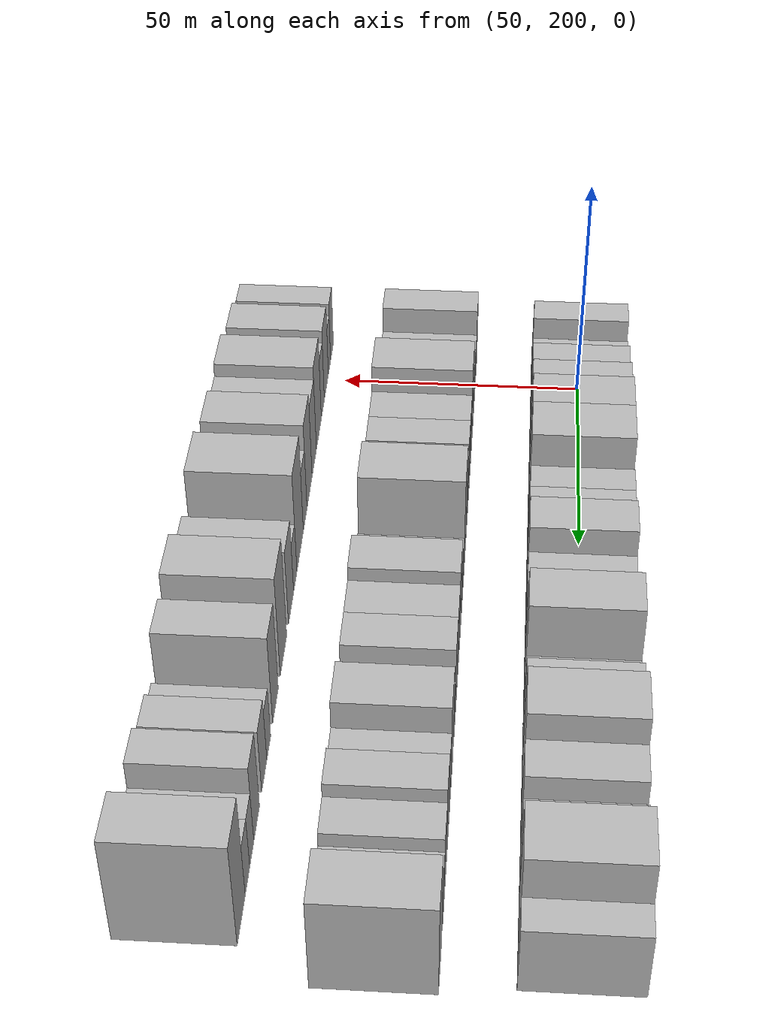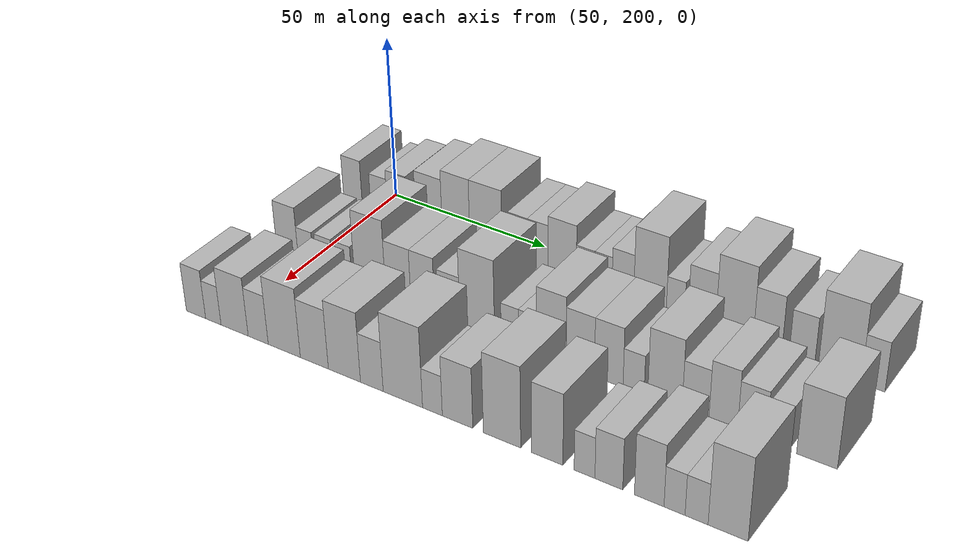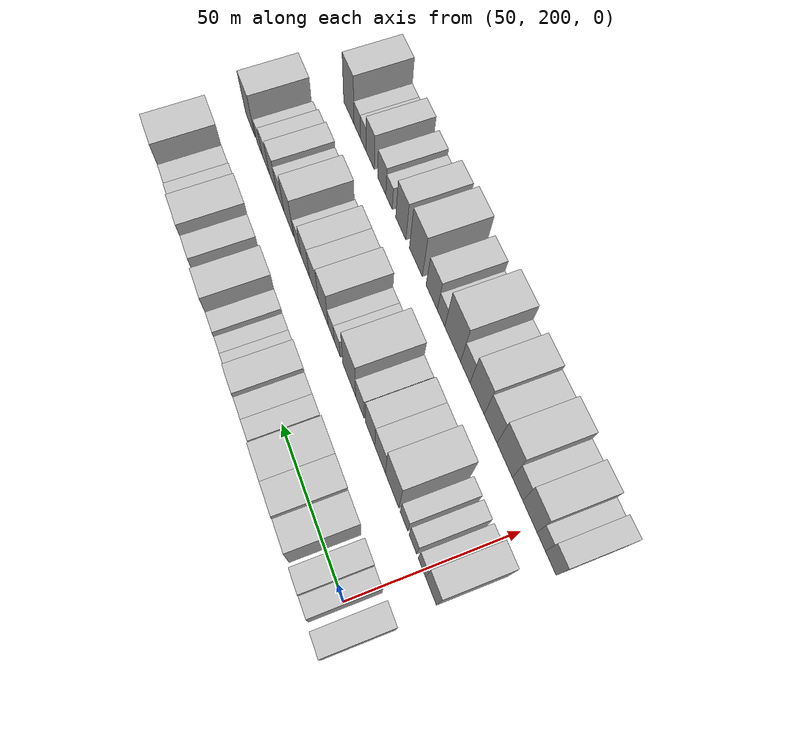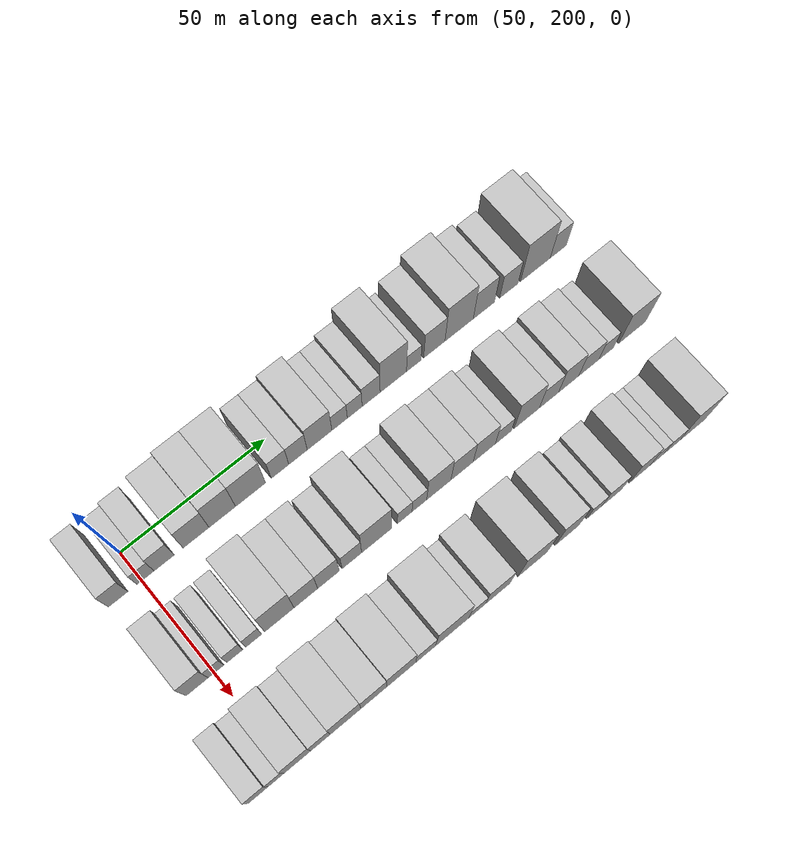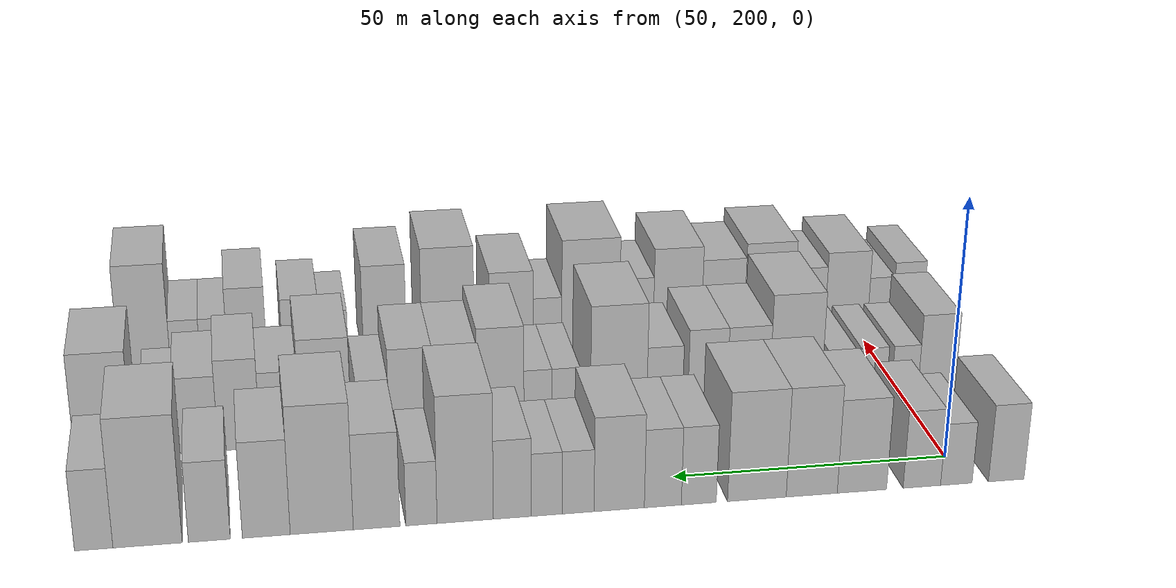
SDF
<sdf version="1.6">
 <world name="default">
  <model name="building_62">
   <static>1</static>
   <pose>50.0000 192.2035 0 0.000000 0.000000 0.000000</pose>
   <link name="link">
    <pose>0 0 7.50 0 0 0</pose>
    <collision name="collision"><geometry><box><size>20.0000 6.5476 15.0000</size></box></geometry></collision>
    <visual name="visual">
     <cast_shadows>0</cast_shadows>
     <geometry><box><size>20.0000 6.5476 15.0000</size></box></geometry>
     <material>
      <script>
       <uri>model://HANNAS_wall/materials/scripts</uri>
       <uri>model://HANNAS_wall/materials/textures</uri>
       <name>vrc/HANNAS_wall</name>
      </script>
     </material>
    </visual>
   </link>
  </model>
  <model name="building_63">
   <static>1</static>
   <pose>50.0000 201.3624 0 0.000000 0.000000 0.000000</pose>
   <link name="link">
    <pose>0 0 6.00 0 0 0</pose>
    <collision name="collision"><geometry><box><size>20.0000 5.7702 12.0000</size></box></geometry></collision>
    <visual name="visual">
     <cast_shadows>0</cast_shadows>
     <geometry><box><size>20.0000 5.7702 12.0000</size></box></geometry>
     <material>
      <script>
       <uri>model://HANNAS_wall/materials/scripts</uri>
       <uri>model://HANNAS_wall/materials/textures</uri>
       <name>vrc/HANNAS_wall</name>
      </script>
     </material>
    </visual>
   </link>
  </model>
  <model name="building_64">
   <static>1</static>
   <pose>50.0000 207.6557 0 0.000000 0.000000 0.000000</pose>
   <link name="link">
    <pose>0 0 7.50 0 0 0</pose>
    <collision name="collision"><geometry><box><size>20.0000 6.8165 15.0000</size></box></geometry></collision>
    <visual name="visual">
     <cast_shadows>0</cast_shadows>
     <geometry><box><size>20.0000 6.8165 15.0000</size></box></geometry>
     <material>
      <script>
       <uri>model://HANNAS_wall/materials/scripts</uri>
       <uri>model://HANNAS_wall/materials/textures</uri>
       <name>vrc/HANNAS_wall</name>
      </script>
     </material>
    </visual>
   </link>
  </model>
  <model name="building_65">
   <static>1</static>
   <pose>50.0000 218.5169 0 0.000000 0.000000 0.000000</pose>
   <link name="link">
    <pose>0 0 9.00 0 0 0</pose>
    <collision name="collision"><geometry><box><size>20.0000 8.9059 18.0000</size></box></geometry></collision>
    <visual name="visual">
     <cast_shadows>0</cast_shadows>
     <geometry><box><size>20.0000 8.9059 18.0000</size></box></geometry>
     <material>
      <script>
       <uri>model://HANNAS_wall/materials/scripts</uri>
       <uri>model://HANNAS_wall/materials/textures</uri>
       <name>vrc/HANNAS_wall</name>
      </script>
     </material>
    </visual>
   </link>
  </model>
  <model name="building_66">
   <static>1</static>
   <pose>50.0000 227.5522 0 0.000000 0.000000 0.000000</pose>
   <link name="link">
    <pose>0 0 10.50 0 0 0</pose>
    <collision name="collision"><geometry><box><size>20.0000 9.1647 21.0000</size></box></geometry></collision>
    <visual name="visual">
     <cast_shadows>0</cast_shadows>
     <geometry><box><size>20.0000 9.1647 21.0000</size></box></geometry>
     <material>
      <script>
       <uri>model://HANNAS_wall/materials/scripts</uri>
       <uri>model://HANNAS_wall/materials/textures</uri>
       <name>vrc/HANNAS_wall</name>
      </script>
     </material>
    </visual>
   </link>
  </model>
  <model name="building_67">
   <static>1</static>
   <pose>50.0000 237.3576 0 0.000000 0.000000 0.000000</pose>
   <link name="link">
    <pose>0 0 10.50 0 0 0</pose>
    <collision name="collision"><geometry><box><size>20.0000 10.4461 21.0000</size></box></geometry></collision>
    <visual name="visual">
     <cast_shadows>0</cast_shadows>
     <geometry><box><size>20.0000 10.4461 21.0000</size></box></geometry>
     <material>
      <script>
       <uri>model://HANNAS_wall/materials/scripts</uri>
       <uri>model://HANNAS_wall/materials/textures</uri>
       <name>vrc/HANNAS_wall</name>
      </script>
     </material>
    </visual>
   </link>
  </model>
  <model name="building_68">
   <static>1</static>
   <pose>50.0000 247.6682 0 0.000000 0.000000 0.000000</pose>
   <link name="link">
    <pose>0 0 7.50 0 0 0</pose>
    <collision name="collision"><geometry><box><size>20.0000 6.1750 15.0000</size></box></geometry></collision>
    <visual name="visual">
     <cast_shadows>0</cast_shadows>
     <geometry><box><size>20.0000 6.1750 15.0000</size></box></geometry>
     <material>
      <script>
       <uri>model://HANNAS_wall/materials/scripts</uri>
       <uri>model://HANNAS_wall/materials/textures</uri>
       <name>vrc/HANNAS_wall</name>
      </script>
     </material>
    </visual>
   </link>
  </model>
  <model name="building_69">
   <static>1</static>
   <pose>50.0000 254.0075 0 0.000000 0.000000 0.000000</pose>
   <link name="link">
    <pose>0 0 7.50 0 0 0</pose>
    <collision name="collision"><geometry><box><size>20.0000 6.5037 15.0000</size></box></geometry></collision>
    <visual name="visual">
     <cast_shadows>0</cast_shadows>
     <geometry><box><size>20.0000 6.5037 15.0000</size></box></geometry>
     <material>
      <script>
       <uri>model://HANNAS_wall/materials/scripts</uri>
       <uri>model://HANNAS_wall/materials/textures</uri>
       <name>vrc/HANNAS_wall</name>
      </script>
     </material>
    </visual>
   </link>
  </model>
  <model name="building_70">
   <static>1</static>
   <pose>50.0000 261.6604 0 0.000000 0.000000 0.000000</pose>
   <link name="link">
    <pose>0 0 9.00 0 0 0</pose>
    <collision name="collision"><geometry><box><size>20.0000 8.8022 18.0000</size></box></geometry></collision>
    <visual name="visual">
     <cast_shadows>0</cast_shadows>
     <geometry><box><size>20.0000 8.8022 18.0000</size></box></geometry>
     <material>
      <script>
       <uri>model://HANNAS_wall/materials/scripts</uri>
       <uri>model://HANNAS_wall/materials/textures</uri>
       <name>vrc/HANNAS_wall</name>
      </script>
     </material>
    </visual>
   </link>
  </model>
  <model name="building_71">
   <static>1</static>
   <pose>50.0000 268.8372 0 0.000000 0.000000 0.000000</pose>
   <link name="link">
    <pose>0 0 6.00 0 0 0</pose>
    <collision name="collision"><geometry><box><size>20.0000 5.5514 12.0000</size></box></geometry></collision>
    <visual name="visual">
     <cast_shadows>0</cast_shadows>
     <geometry><box><size>20.0000 5.5514 12.0000</size></box></geometry>
     <material>
      <script>
       <uri>model://HANNAS_wall/materials/scripts</uri>
       <uri>model://HANNAS_wall/materials/textures</uri>
       <name>vrc/HANNAS_wall</name>
      </script>
     </material>
    </visual>
   </link>
  </model>
  <model name="building_72">
   <static>1</static>
   <pose>50.0000 274.2796 0 0.000000 0.000000 0.000000</pose>
   <link name="link">
    <pose>0 0 6.00 0 0 0</pose>
    <collision name="collision"><geometry><box><size>20.0000 5.3334 12.0000</size></box></geometry></collision>
    <visual name="visual">
     <cast_shadows>0</cast_shadows>
     <geometry><box><size>20.0000 5.3334 12.0000</size></box></geometry>
     <material>
      <script>
       <uri>model://HANNAS_wall/materials/scripts</uri>
       <uri>model://HANNAS_wall/materials/textures</uri>
       <name>vrc/HANNAS_wall</name>
      </script>
     </material>
    </visual>
   </link>
  </model>
  <model name="building_73">
   <static>1</static>
   <pose>50.0000 280.2043 0 0.000000 0.000000 0.000000</pose>
   <link name="link">
    <pose>0 0 7.50 0 0 0</pose>
    <collision name="collision"><geometry><box><size>20.0000 6.5159 15.0000</size></box></geometry></collision>
    <visual name="visual">
     <cast_shadows>0</cast_shadows>
     <geometry><box><size>20.0000 6.5159 15.0000</size></box></geometry>
     <material>
      <script>
       <uri>model://HANNAS_wall/materials/scripts</uri>
       <uri>model://HANNAS_wall/materials/textures</uri>
       <name>vrc/HANNAS_wall</name>
      </script>
     </material>
    </visual>
   </link>
  </model>
  <model name="building_74">
   <static>1</static>
   <pose>50.0000 288.2811 0 0.000000 0.000000 0.000000</pose>
   <link name="link">
    <pose>0 0 12.00 0 0 0</pose>
    <collision name="collision"><geometry><box><size>20.0000 9.6376 24.0000</size></box></geometry></collision>
    <visual name="visual">
     <cast_shadows>0</cast_shadows>
     <geometry><box><size>20.0000 9.6376 24.0000</size></box></geometry>
     <material>
      <script>
       <uri>model://HANNAS_wall/materials/scripts</uri>
       <uri>model://HANNAS_wall/materials/textures</uri>
       <name>vrc/HANNAS_wall</name>
      </script>
     </material>
    </visual>
   </link>
  </model>
  <model name="building_75">
   <static>1</static>
   <pose>50.0000 295.7619 0 0.000000 0.000000 0.000000</pose>
   <link name="link">
    <pose>0 0 6.00 0 0 0</pose>
    <collision name="collision"><geometry><box><size>20.0000 5.3240 12.0000</size></box></geometry></collision>
    <visual name="visual">
     <cast_shadows>0</cast_shadows>
     <geometry><box><size>20.0000 5.3240 12.0000</size></box></geometry>
     <material>
      <script>
       <uri>model://HANNAS_wall/materials/scripts</uri>
       <uri>model://HANNAS_wall/materials/textures</uri>
       <name>vrc/HANNAS_wall</name>
      </script>
     </material>
    </visual>
   </link>
  </model>
  <model name="building_76">
   <static>1</static>
   <pose>50.0000 303.3738 0 0.000000 0.000000 0.000000</pose>
   <link name="link">
    <pose>0 0 9.00 0 0 0</pose>
    <collision name="collision"><geometry><box><size>20.0000 7.8997 18.0000</size></box></geometry></collision>
    <visual name="visual">
     <cast_shadows>0</cast_shadows>
     <geometry><box><size>20.0000 7.8997 18.0000</size></box></geometry>
     <material>
      <script>
       <uri>model://HANNAS_wall/materials/scripts</uri>
       <uri>model://HANNAS_wall/materials/textures</uri>
       <name>vrc/HANNAS_wall</name>
      </script>
     </material>
    </visual>
   </link>
  </model>
  <model name="building_77">
   <static>1</static>
   <pose>50.0000 312.6191 0 0.000000 0.000000 0.000000</pose>
   <link name="link">
    <pose>0 0 12.00 0 0 0</pose>
    <collision name="collision"><geometry><box><size>20.0000 10.5907 24.0000</size></box></geometry></collision>
    <visual name="visual">
     <cast_shadows>0</cast_shadows>
     <geometry><box><size>20.0000 10.5907 24.0000</size></box></geometry>
     <material>
      <script>
       <uri>model://HANNAS_wall/materials/scripts</uri>
       <uri>model://HANNAS_wall/materials/textures</uri>
       <name>vrc/HANNAS_wall</name>
      </script>
     </material>
    </visual>
   </link>
  </model>
  <model name="building_78">
   <static>1</static>
   <pose>50.0000 321.9065 0 0.000000 0.000000 0.000000</pose>
   <link name="link">
    <pose>0 0 9.00 0 0 0</pose>
    <collision name="collision"><geometry><box><size>20.0000 7.9841 18.0000</size></box></geometry></collision>
    <visual name="visual">
     <cast_shadows>0</cast_shadows>
     <geometry><box><size>20.0000 7.9841 18.0000</size></box></geometry>
     <material>
      <script>
       <uri>model://HANNAS_wall/materials/scripts</uri>
       <uri>model://HANNAS_wall/materials/textures</uri>
       <name>vrc/HANNAS_wall</name>
      </script>
     </material>
    </visual>
   </link>
  </model>
  <model name="building_79">
   <static>1</static>
   <pose>50.0000 331.3743 0 0.000000 0.000000 0.000000</pose>
   <link name="link">
    <pose>0 0 7.50 0 0 0</pose>
    <collision name="collision"><geometry><box><size>20.0000 6.9515 15.0000</size></box></geometry></collision>
    <visual name="visual">
     <cast_shadows>0</cast_shadows>
     <geometry><box><size>20.0000 6.9515 15.0000</size></box></geometry>
     <material>
      <script>
       <uri>model://HANNAS_wall/materials/scripts</uri>
       <uri>model://HANNAS_wall/materials/textures</uri>
       <name>vrc/HANNAS_wall</name>
      </script>
     </material>
    </visual>
   </link>
  </model>
  <model name="building_80">
   <static>1</static>
   <pose>50.0000 341.5465 0 0.000000 0.000000 0.000000</pose>
   <link name="link">
    <pose>0 0 12.00 0 0 0</pose>
    <collision name="collision"><geometry><box><size>20.0000 11.3930 24.0000</size></box></geometry></collision>
    <visual name="visual">
     <cast_shadows>0</cast_shadows>
     <geometry><box><size>20.0000 11.3930 24.0000</size></box></geometry>
     <material>
      <script>
       <uri>model://HANNAS_wall/materials/scripts</uri>
       <uri>model://HANNAS_wall/materials/textures</uri>
       <name>vrc/HANNAS_wall</name>
      </script>
     </material>
    </visual>
   </link>
  </model>
  <model name="building_81">
   <static>1</static>
   <pose>50.0000 350.3793 0 0.000000 0.000000 0.000000</pose>
   <link name="link">
    <pose>0 0 7.50 0 0 0</pose>
    <collision name="collision"><geometry><box><size>20.0000 6.2726 15.0000</size></box></geometry></collision>
    <visual name="visual">
     <cast_shadows>0</cast_shadows>
     <geometry><box><size>20.0000 6.2726 15.0000</size></box></geometry>
     <material>
      <script>
       <uri>model://HANNAS_wall/materials/scripts</uri>
       <uri>model://HANNAS_wall/materials/textures</uri>
       <name>vrc/HANNAS_wall</name>
      </script>
     </material>
    </visual>
   </link>
  </model>
  <model name="building_139">
   <static>1</static>
   <pose>82.0000 194.4306 0 0.000000 0.000000 0.000000</pose>
   <link name="link">
    <pose>0 0 9.00 0 0 0</pose>
    <collision name="collision"><geometry><box><size>20.0000 7.3424 18.0000</size></box></geometry></collision>
    <visual name="visual">
     <cast_shadows>0</cast_shadows>
     <geometry><box><size>20.0000 7.3424 18.0000</size></box></geometry>
     <material>
      <script>
       <uri>model://HANNAS_wall/materials/scripts</uri>
       <uri>model://HANNAS_wall/materials/textures</uri>
       <name>vrc/HANNAS_wall</name>
      </script>
     </material>
    </visual>
   </link>
  </model>
  <model name="building_140">
   <static>1</static>
   <pose>82.0000 200.7075 0 0.000000 0.000000 0.000000</pose>
   <link name="link">
    <pose>0 0 6.00 0 0 0</pose>
    <collision name="collision"><geometry><box><size>20.0000 5.2113 12.0000</size></box></geometry></collision>
    <visual name="visual">
     <cast_shadows>0</cast_shadows>
     <geometry><box><size>20.0000 5.2113 12.0000</size></box></geometry>
     <material>
      <script>
       <uri>model://HANNAS_wall/materials/scripts</uri>
       <uri>model://HANNAS_wall/materials/textures</uri>
       <name>vrc/HANNAS_wall</name>
      </script>
     </material>
    </visual>
   </link>
  </model>
  <model name="building_141">
   <static>1</static>
   <pose>82.0000 206.9943 0 0.000000 0.000000 0.000000</pose>
   <link name="link">
    <pose>0 0 6.00 0 0 0</pose>
    <collision name="collision"><geometry><box><size>20.0000 5.3624 12.0000</size></box></geometry></collision>
    <visual name="visual">
     <cast_shadows>0</cast_shadows>
     <geometry><box><size>20.0000 5.3624 12.0000</size></box></geometry>
     <material>
      <script>
       <uri>model://HANNAS_wall/materials/scripts</uri>
       <uri>model://HANNAS_wall/materials/textures</uri>
       <name>vrc/HANNAS_wall</name>
      </script>
     </material>
    </visual>
   </link>
  </model>
  <model name="building_142">
   <static>1</static>
   <pose>82.0000 213.3565 0 0.000000 0.000000 0.000000</pose>
   <link name="link">
    <pose>0 0 6.00 0 0 0</pose>
    <collision name="collision"><geometry><box><size>20.0000 5.3619 12.0000</size></box></geometry></collision>
    <visual name="visual">
     <cast_shadows>0</cast_shadows>
     <geometry><box><size>20.0000 5.3619 12.0000</size></box></geometry>
     <material>
      <script>
       <uri>model://HANNAS_wall/materials/scripts</uri>
       <uri>model://HANNAS_wall/materials/textures</uri>
       <name>vrc/HANNAS_wall</name>
      </script>
     </material>
    </visual>
   </link>
  </model>
  <model name="building_143">
   <static>1</static>
   <pose>82.0000 222.0571 0 0.000000 0.000000 0.000000</pose>
   <link name="link">
    <pose>0 0 12.00 0 0 0</pose>
    <collision name="collision"><geometry><box><size>20.0000 10.0393 24.0000</size></box></geometry></collision>
    <visual name="visual">
     <cast_shadows>0</cast_shadows>
     <geometry><box><size>20.0000 10.0393 24.0000</size></box></geometry>
     <material>
      <script>
       <uri>model://HANNAS_wall/materials/scripts</uri>
       <uri>model://HANNAS_wall/materials/textures</uri>
       <name>vrc/HANNAS_wall</name>
      </script>
     </material>
    </visual>
   </link>
  </model>
  <model name="building_144">
   <static>1</static>
   <pose>82.0000 231.1320 0 0.000000 0.000000 0.000000</pose>
   <link name="link">
    <pose>0 0 9.00 0 0 0</pose>
    <collision name="collision"><geometry><box><size>20.0000 8.1106 18.0000</size></box></geometry></collision>
    <visual name="visual">
     <cast_shadows>0</cast_shadows>
     <geometry><box><size>20.0000 8.1106 18.0000</size></box></geometry>
     <material>
      <script>
       <uri>model://HANNAS_wall/materials/scripts</uri>
       <uri>model://HANNAS_wall/materials/textures</uri>
       <name>vrc/HANNAS_wall</name>
      </script>
     </material>
    </visual>
   </link>
  </model>
  <model name="building_145">
   <static>1</static>
   <pose>82.0000 238.9302 0 0.000000 0.000000 0.000000</pose>
   <link name="link">
    <pose>0 0 9.00 0 0 0</pose>
    <collision name="collision"><geometry><box><size>20.0000 7.4857 18.0000</size></box></geometry></collision>
    <visual name="visual">
     <cast_shadows>0</cast_shadows>
     <geometry><box><size>20.0000 7.4857 18.0000</size></box></geometry>
     <material>
      <script>
       <uri>model://HANNAS_wall/materials/scripts</uri>
       <uri>model://HANNAS_wall/materials/textures</uri>
       <name>vrc/HANNAS_wall</name>
      </script>
     </material>
    </visual>
   </link>
  </model>
  <model name="building_146">
   <static>1</static>
   <pose>82.0000 247.0706 0 0.000000 0.000000 0.000000</pose>
   <link name="link">
    <pose>0 0 7.50 0 0 0</pose>
    <collision name="collision"><geometry><box><size>20.0000 6.7950 15.0000</size></box></geometry></collision>
    <visual name="visual">
     <cast_shadows>0</cast_shadows>
     <geometry><box><size>20.0000 6.7950 15.0000</size></box></geometry>
     <material>
      <script>
       <uri>model://HANNAS_wall/materials/scripts</uri>
       <uri>model://HANNAS_wall/materials/textures</uri>
       <name>vrc/HANNAS_wall</name>
      </script>
     </material>
    </visual>
   </link>
  </model>
  <model name="building_147">
   <static>1</static>
   <pose>82.0000 255.7793 0 0.000000 0.000000 0.000000</pose>
   <link name="link">
    <pose>0 0 12.00 0 0 0</pose>
    <collision name="collision"><geometry><box><size>20.0000 10.6225 24.0000</size></box></geometry></collision>
    <visual name="visual">
     <cast_shadows>0</cast_shadows>
     <geometry><box><size>20.0000 10.6225 24.0000</size></box></geometry>
     <material>
      <script>
       <uri>model://HANNAS_wall/materials/scripts</uri>
       <uri>model://HANNAS_wall/materials/textures</uri>
       <name>vrc/HANNAS_wall</name>
      </script>
     </material>
    </visual>
   </link>
  </model>
  <model name="building_148">
   <static>1</static>
   <pose>82.0000 265.7007 0 0.000000 0.000000 0.000000</pose>
   <link name="link">
    <pose>0 0 6.00 0 0 0</pose>
    <collision name="collision"><geometry><box><size>20.0000 5.2203 12.0000</size></box></geometry></collision>
    <visual name="visual">
     <cast_shadows>0</cast_shadows>
     <geometry><box><size>20.0000 5.2203 12.0000</size></box></geometry>
     <material>
      <script>
       <uri>model://HANNAS_wall/materials/scripts</uri>
       <uri>model://HANNAS_wall/materials/textures</uri>
       <name>vrc/HANNAS_wall</name>
      </script>
     </material>
    </visual>
   </link>
  </model>
  <model name="building_149">
   <static>1</static>
   <pose>82.0000 270.9195 0 0.000000 0.000000 0.000000</pose>
   <link name="link">
    <pose>0 0 6.00 0 0 0</pose>
    <collision name="collision"><geometry><box><size>20.0000 5.2173 12.0000</size></box></geometry></collision>
    <visual name="visual">
     <cast_shadows>0</cast_shadows>
     <geometry><box><size>20.0000 5.2173 12.0000</size></box></geometry>
     <material>
      <script>
       <uri>model://HANNAS_wall/materials/scripts</uri>
       <uri>model://HANNAS_wall/materials/textures</uri>
       <name>vrc/HANNAS_wall</name>
      </script>
     </material>
    </visual>
   </link>
  </model>
  <model name="building_150">
   <static>1</static>
   <pose>82.0000 277.8960 0 0.000000 0.000000 0.000000</pose>
   <link name="link">
    <pose>0 0 10.50 0 0 0</pose>
    <collision name="collision"><geometry><box><size>20.0000 8.7357 21.0000</size></box></geometry></collision>
    <visual name="visual">
     <cast_shadows>0</cast_shadows>
     <geometry><box><size>20.0000 8.7357 21.0000</size></box></geometry>
     <material>
      <script>
       <uri>model://HANNAS_wall/materials/scripts</uri>
       <uri>model://HANNAS_wall/materials/textures</uri>
       <name>vrc/HANNAS_wall</name>
      </script>
     </material>
    </visual>
   </link>
  </model>
  <model name="building_151">
   <static>1</static>
   <pose>82.0000 286.3137 0 0.000000 0.000000 0.000000</pose>
   <link name="link">
    <pose>0 0 9.00 0 0 0</pose>
    <collision name="collision"><geometry><box><size>20.0000 8.0998 18.0000</size></box></geometry></collision>
    <visual name="visual">
     <cast_shadows>0</cast_shadows>
     <geometry><box><size>20.0000 8.0998 18.0000</size></box></geometry>
     <material>
      <script>
       <uri>model://HANNAS_wall/materials/scripts</uri>
       <uri>model://HANNAS_wall/materials/textures</uri>
       <name>vrc/HANNAS_wall</name>
      </script>
     </material>
    </visual>
   </link>
  </model>
  <model name="building_152">
   <static>1</static>
   <pose>82.0000 294.4195 0 0.000000 0.000000 0.000000</pose>
   <link name="link">
    <pose>0 0 9.00 0 0 0</pose>
    <collision name="collision"><geometry><box><size>20.0000 8.1119 18.0000</size></box></geometry></collision>
    <visual name="visual">
     <cast_shadows>0</cast_shadows>
     <geometry><box><size>20.0000 8.1119 18.0000</size></box></geometry>
     <material>
      <script>
       <uri>model://HANNAS_wall/materials/scripts</uri>
       <uri>model://HANNAS_wall/materials/textures</uri>
       <name>vrc/HANNAS_wall</name>
      </script>
     </material>
    </visual>
   </link>
  </model>
  <model name="building_153">
   <static>1</static>
   <pose>82.0000 301.4071 0 0.000000 0.000000 0.000000</pose>
   <link name="link">
    <pose>0 0 6.00 0 0 0</pose>
    <collision name="collision"><geometry><box><size>20.0000 5.8632 12.0000</size></box></geometry></collision>
    <visual name="visual">
     <cast_shadows>0</cast_shadows>
     <geometry><box><size>20.0000 5.8632 12.0000</size></box></geometry>
     <material>
      <script>
       <uri>model://HANNAS_wall/materials/scripts</uri>
       <uri>model://HANNAS_wall/materials/textures</uri>
       <name>vrc/HANNAS_wall</name>
      </script>
     </material>
    </visual>
   </link>
  </model>
  <model name="building_154">
   <static>1</static>
   <pose>82.0000 310.0342 0 0.000000 0.000000 0.000000</pose>
   <link name="link">
    <pose>0 0 10.50 0 0 0</pose>
    <collision name="collision"><geometry><box><size>20.0000 9.3911 21.0000</size></box></geometry></collision>
    <visual name="visual">
     <cast_shadows>0</cast_shadows>
     <geometry><box><size>20.0000 9.3911 21.0000</size></box></geometry>
     <material>
      <script>
       <uri>model://HANNAS_wall/materials/scripts</uri>
       <uri>model://HANNAS_wall/materials/textures</uri>
       <name>vrc/HANNAS_wall</name>
      </script>
     </material>
    </visual>
   </link>
  </model>
  <model name="building_155">
   <static>1</static>
   <pose>82.0000 318.3293 0 0.000000 0.000000 0.000000</pose>
   <link name="link">
    <pose>0 0 7.50 0 0 0</pose>
    <collision name="collision"><geometry><box><size>20.0000 7.1992 15.0000</size></box></geometry></collision>
    <visual name="visual">
     <cast_shadows>0</cast_shadows>
     <geometry><box><size>20.0000 7.1992 15.0000</size></box></geometry>
     <material>
      <script>
       <uri>model://HANNAS_wall/materials/scripts</uri>
       <uri>model://HANNAS_wall/materials/textures</uri>
       <name>vrc/HANNAS_wall</name>
      </script>
     </material>
    </visual>
   </link>
  </model>
  <model name="building_156">
   <static>1</static>
   <pose>82.0000 325.7217 0 0.000000 0.000000 0.000000</pose>
   <link name="link">
    <pose>0 0 9.00 0 0 0</pose>
    <collision name="collision"><geometry><box><size>20.0000 7.5855 18.0000</size></box></geometry></collision>
    <visual name="visual">
     <cast_shadows>0</cast_shadows>
     <geometry><box><size>20.0000 7.5855 18.0000</size></box></geometry>
     <material>
      <script>
       <uri>model://HANNAS_wall/materials/scripts</uri>
       <uri>model://HANNAS_wall/materials/textures</uri>
       <name>vrc/HANNAS_wall</name>
      </script>
     </material>
    </visual>
   </link>
  </model>
  <model name="building_157">
   <static>1</static>
   <pose>82.0000 333.2637 0 0.000000 0.000000 0.000000</pose>
   <link name="link">
    <pose>0 0 7.50 0 0 0</pose>
    <collision name="collision"><geometry><box><size>20.0000 7.4985 15.0000</size></box></geometry></collision>
    <visual name="visual">
     <cast_shadows>0</cast_shadows>
     <geometry><box><size>20.0000 7.4985 15.0000</size></box></geometry>
     <material>
      <script>
       <uri>model://HANNAS_wall/materials/scripts</uri>
       <uri>model://HANNAS_wall/materials/textures</uri>
       <name>vrc/HANNAS_wall</name>
      </script>
     </material>
    </visual>
   </link>
  </model>
  <model name="building_158">
   <static>1</static>
   <pose>82.0000 339.8925 0 0.000000 0.000000 0.000000</pose>
   <link name="link">
    <pose>0 0 6.00 0 0 0</pose>
    <collision name="collision"><geometry><box><size>20.0000 5.7591 12.0000</size></box></geometry></collision>
    <visual name="visual">
     <cast_shadows>0</cast_shadows>
     <geometry><box><size>20.0000 5.7591 12.0000</size></box></geometry>
     <material>
      <script>
       <uri>model://HANNAS_wall/materials/scripts</uri>
       <uri>model://HANNAS_wall/materials/textures</uri>
       <name>vrc/HANNAS_wall</name>
      </script>
     </material>
    </visual>
   </link>
  </model>
  <model name="building_159">
   <static>1</static>
   <pose>82.0000 349.9084 0 0.000000 0.000000 0.000000</pose>
   <link name="link">
    <pose>0 0 10.50 0 0 0</pose>
    <collision name="collision"><geometry><box><size>20.0000 10.2727 21.0000</size></box></geometry></collision>
    <visual name="visual">
     <cast_shadows>0</cast_shadows>
     <geometry><box><size>20.0000 10.2727 21.0000</size></box></geometry>
     <material>
      <script>
       <uri>model://HANNAS_wall/materials/scripts</uri>
       <uri>model://HANNAS_wall/materials/textures</uri>
       <name>vrc/HANNAS_wall</name>
      </script>
     </material>
    </visual>
   </link>
  </model>
  <model name="building_222">
   <static>1</static>
   <pose>114.0000 189.8318 0 0.000000 0.000000 0.000000</pose>
   <link name="link">
    <pose>0 0 7.50 0 0 0</pose>
    <collision name="collision"><geometry><box><size>20.0000 6.5047 15.0000</size></box></geometry></collision>
    <visual name="visual">
     <cast_shadows>0</cast_shadows>
     <geometry><box><size>20.0000 6.5047 15.0000</size></box></geometry>
     <material>
      <script>
       <uri>model://HANNAS_wall/materials/scripts</uri>
       <uri>model://HANNAS_wall/materials/textures</uri>
       <name>vrc/HANNAS_wall</name>
      </script>
     </material>
    </visual>
   </link>
  </model>
  <model name="building_223">
   <static>1</static>
   <pose>114.0000 195.6617 0 0.000000 0.000000 0.000000</pose>
   <link name="link">
    <pose>0 0 6.00 0 0 0</pose>
    <collision name="collision"><geometry><box><size>20.0000 5.1552 12.0000</size></box></geometry></collision>
    <visual name="visual">
     <cast_shadows>0</cast_shadows>
     <geometry><box><size>20.0000 5.1552 12.0000</size></box></geometry>
     <material>
      <script>
       <uri>model://HANNAS_wall/materials/scripts</uri>
       <uri>model://HANNAS_wall/materials/textures</uri>
       <name>vrc/HANNAS_wall</name>
      </script>
     </material>
    </visual>
   </link>
  </model>
  <model name="building_224">
   <static>1</static>
   <pose>114.0000 202.7261 0 0.000000 0.000000 0.000000</pose>
   <link name="link">
    <pose>0 0 9.00 0 0 0</pose>
    <collision name="collision"><geometry><box><size>20.0000 8.9735 18.0000</size></box></geometry></collision>
    <visual name="visual">
     <cast_shadows>0</cast_shadows>
     <geometry><box><size>20.0000 8.9735 18.0000</size></box></geometry>
     <material>
      <script>
       <uri>model://HANNAS_wall/materials/scripts</uri>
       <uri>model://HANNAS_wall/materials/textures</uri>
       <name>vrc/HANNAS_wall</name>
      </script>
     </material>
    </visual>
   </link>
  </model>
  <model name="building_225">
   <static>1</static>
   <pose>114.0000 210.4821 0 0.000000 0.000000 0.000000</pose>
   <link name="link">
    <pose>0 0 7.50 0 0 0</pose>
    <collision name="collision"><geometry><box><size>20.0000 6.5384 15.0000</size></box></geometry></collision>
    <visual name="visual">
     <cast_shadows>0</cast_shadows>
     <geometry><box><size>20.0000 6.5384 15.0000</size></box></geometry>
     <material>
      <script>
       <uri>model://HANNAS_wall/materials/scripts</uri>
       <uri>model://HANNAS_wall/materials/textures</uri>
       <name>vrc/HANNAS_wall</name>
      </script>
     </material>
    </visual>
   </link>
  </model>
  <model name="building_226">
   <static>1</static>
   <pose>114.0000 218.8945 0 0.000000 0.000000 0.000000</pose>
   <link name="link">
    <pose>0 0 10.50 0 0 0</pose>
    <collision name="collision"><geometry><box><size>20.0000 10.2864 21.0000</size></box></geometry></collision>
    <visual name="visual">
     <cast_shadows>0</cast_shadows>
     <geometry><box><size>20.0000 10.2864 21.0000</size></box></geometry>
     <material>
      <script>
       <uri>model://HANNAS_wall/materials/scripts</uri>
       <uri>model://HANNAS_wall/materials/textures</uri>
       <name>vrc/HANNAS_wall</name>
      </script>
     </material>
    </visual>
   </link>
  </model>
  <model name="building_227">
   <static>1</static>
   <pose>114.0000 228.4348 0 0.000000 0.000000 0.000000</pose>
   <link name="link">
    <pose>0 0 9.00 0 0 0</pose>
    <collision name="collision"><geometry><box><size>20.0000 8.7943 18.0000</size></box></geometry></collision>
    <visual name="visual">
     <cast_shadows>0</cast_shadows>
     <geometry><box><size>20.0000 8.7943 18.0000</size></box></geometry>
     <material>
      <script>
       <uri>model://HANNAS_wall/materials/scripts</uri>
       <uri>model://HANNAS_wall/materials/textures</uri>
       <name>vrc/HANNAS_wall</name>
      </script>
     </material>
    </visual>
   </link>
  </model>
  <model name="building_228">
   <static>1</static>
   <pose>114.0000 237.7770 0 0.000000 0.000000 0.000000</pose>
   <link name="link">
    <pose>0 0 10.50 0 0 0</pose>
    <collision name="collision"><geometry><box><size>20.0000 9.8902 21.0000</size></box></geometry></collision>
    <visual name="visual">
     <cast_shadows>0</cast_shadows>
     <geometry><box><size>20.0000 9.8902 21.0000</size></box></geometry>
     <material>
      <script>
       <uri>model://HANNAS_wall/materials/scripts</uri>
       <uri>model://HANNAS_wall/materials/textures</uri>
       <name>vrc/HANNAS_wall</name>
      </script>
     </material>
    </visual>
   </link>
  </model>
  <model name="building_229">
   <static>1</static>
   <pose>114.0000 246.1619 0 0.000000 0.000000 0.000000</pose>
   <link name="link">
    <pose>0 0 7.50 0 0 0</pose>
    <collision name="collision"><geometry><box><size>20.0000 6.8795 15.0000</size></box></geometry></collision>
    <visual name="visual">
     <cast_shadows>0</cast_shadows>
     <geometry><box><size>20.0000 6.8795 15.0000</size></box></geometry>
     <material>
      <script>
       <uri>model://HANNAS_wall/materials/scripts</uri>
       <uri>model://HANNAS_wall/materials/textures</uri>
       <name>vrc/HANNAS_wall</name>
      </script>
     </material>
    </visual>
   </link>
  </model>
  <model name="building_230">
   <static>1</static>
   <pose>114.0000 255.4451 0 0.000000 0.000000 0.000000</pose>
   <link name="link">
    <pose>0 0 12.00 0 0 0</pose>
    <collision name="collision"><geometry><box><size>20.0000 11.6871 24.0000</size></box></geometry></collision>
    <visual name="visual">
     <cast_shadows>0</cast_shadows>
     <geometry><box><size>20.0000 11.6871 24.0000</size></box></geometry>
     <material>
      <script>
       <uri>model://HANNAS_wall/materials/scripts</uri>
       <uri>model://HANNAS_wall/materials/textures</uri>
       <name>vrc/HANNAS_wall</name>
      </script>
     </material>
    </visual>
   </link>
  </model>
  <model name="building_231">
   <static>1</static>
   <pose>114.0000 264.1719 0 0.000000 0.000000 0.000000</pose>
   <link name="link">
    <pose>0 0 6.00 0 0 0</pose>
    <collision name="collision"><geometry><box><size>20.0000 5.7664 12.0000</size></box></geometry></collision>
    <visual name="visual">
     <cast_shadows>0</cast_shadows>
     <geometry><box><size>20.0000 5.7664 12.0000</size></box></geometry>
     <material>
      <script>
       <uri>model://HANNAS_wall/materials/scripts</uri>
       <uri>model://HANNAS_wall/materials/textures</uri>
       <name>vrc/HANNAS_wall</name>
      </script>
     </material>
    </visual>
   </link>
  </model>
  <model name="building_232">
   <static>1</static>
   <pose>114.0000 271.4260 0 0.000000 0.000000 0.000000</pose>
   <link name="link">
    <pose>0 0 9.00 0 0 0</pose>
    <collision name="collision"><geometry><box><size>20.0000 8.7417 18.0000</size></box></geometry></collision>
    <visual name="visual">
     <cast_shadows>0</cast_shadows>
     <geometry><box><size>20.0000 8.7417 18.0000</size></box></geometry>
     <material>
      <script>
       <uri>model://HANNAS_wall/materials/scripts</uri>
       <uri>model://HANNAS_wall/materials/textures</uri>
       <name>vrc/HANNAS_wall</name>
      </script>
     </material>
    </visual>
   </link>
  </model>
  <model name="building_233">
   <static>1</static>
   <pose>114.0000 284.0122 0 0.000000 0.000000 0.000000</pose>
   <link name="link">
    <pose>0 0 12.00 0 0 0</pose>
    <collision name="collision"><geometry><box><size>20.0000 10.4307 24.0000</size></box></geometry></collision>
    <visual name="visual">
     <cast_shadows>0</cast_shadows>
     <geometry><box><size>20.0000 10.4307 24.0000</size></box></geometry>
     <material>
      <script>
       <uri>model://HANNAS_wall/materials/scripts</uri>
       <uri>model://HANNAS_wall/materials/textures</uri>
       <name>vrc/HANNAS_wall</name>
      </script>
     </material>
    </visual>
   </link>
  </model>
  <model name="building_234">
   <static>1</static>
   <pose>114.0000 296.4840 0 0.000000 0.000000 0.000000</pose>
   <link name="link">
    <pose>0 0 10.50 0 0 0</pose>
    <collision name="collision"><geometry><box><size>20.0000 8.5129 21.0000</size></box></geometry></collision>
    <visual name="visual">
     <cast_shadows>0</cast_shadows>
     <geometry><box><size>20.0000 8.5129 21.0000</size></box></geometry>
     <material>
      <script>
       <uri>model://HANNAS_wall/materials/scripts</uri>
       <uri>model://HANNAS_wall/materials/textures</uri>
       <name>vrc/HANNAS_wall</name>
      </script>
     </material>
    </visual>
   </link>
  </model>
  <model name="building_235">
   <static>1</static>
   <pose>114.0000 306.5077 0 0.000000 0.000000 0.000000</pose>
   <link name="link">
    <pose>0 0 6.00 0 0 0</pose>
    <collision name="collision"><geometry><box><size>20.0000 5.5345 12.0000</size></box></geometry></collision>
    <visual name="visual">
     <cast_shadows>0</cast_shadows>
     <geometry><box><size>20.0000 5.5345 12.0000</size></box></geometry>
     <material>
      <script>
       <uri>model://HANNAS_wall/materials/scripts</uri>
       <uri>model://HANNAS_wall/materials/textures</uri>
       <name>vrc/HANNAS_wall</name>
      </script>
     </material>
    </visual>
   </link>
  </model>
  <model name="building_236">
   <static>1</static>
   <pose>114.0000 312.9232 0 0.000000 0.000000 0.000000</pose>
   <link name="link">
    <pose>0 0 7.50 0 0 0</pose>
    <collision name="collision"><geometry><box><size>20.0000 7.2966 15.0000</size></box></geometry></collision>
    <visual name="visual">
     <cast_shadows>0</cast_shadows>
     <geometry><box><size>20.0000 7.2966 15.0000</size></box></geometry>
     <material>
      <script>
       <uri>model://HANNAS_wall/materials/scripts</uri>
       <uri>model://HANNAS_wall/materials/textures</uri>
       <name>vrc/HANNAS_wall</name>
      </script>
     </material>
    </visual>
   </link>
  </model>
  <model name="building_237">
   <static>1</static>
   <pose>114.0000 323.3651 0 0.000000 0.000000 0.000000</pose>
   <link name="link">
    <pose>0 0 9.00 0 0 0</pose>
    <collision name="collision"><geometry><box><size>20.0000 7.5872 18.0000</size></box></geometry></collision>
    <visual name="visual">
     <cast_shadows>0</cast_shadows>
     <geometry><box><size>20.0000 7.5872 18.0000</size></box></geometry>
     <material>
      <script>
       <uri>model://HANNAS_wall/materials/scripts</uri>
       <uri>model://HANNAS_wall/materials/textures</uri>
       <name>vrc/HANNAS_wall</name>
      </script>
     </material>
    </visual>
   </link>
  </model>
  <model name="building_238">
   <static>1</static>
   <pose>114.0000 329.8129 0 0.000000 0.000000 0.000000</pose>
   <link name="link">
    <pose>0 0 6.00 0 0 0</pose>
    <collision name="collision"><geometry><box><size>20.0000 5.3084 12.0000</size></box></geometry></collision>
    <visual name="visual">
     <cast_shadows>0</cast_shadows>
     <geometry><box><size>20.0000 5.3084 12.0000</size></box></geometry>
     <material>
      <script>
       <uri>model://HANNAS_wall/materials/scripts</uri>
       <uri>model://HANNAS_wall/materials/textures</uri>
       <name>vrc/HANNAS_wall</name>
      </script>
     </material>
    </visual>
   </link>
  </model>
  <model name="building_239">
   <static>1</static>
   <pose>114.0000 335.3323 0 0.000000 0.000000 0.000000</pose>
   <link name="link">
    <pose>0 0 6.00 0 0 0</pose>
    <collision name="collision"><geometry><box><size>20.0000 5.7305 12.0000</size></box></geometry></collision>
    <visual name="visual">
     <cast_shadows>0</cast_shadows>
     <geometry><box><size>20.0000 5.7305 12.0000</size></box></geometry>
     <material>
      <script>
       <uri>model://HANNAS_wall/materials/scripts</uri>
       <uri>model://HANNAS_wall/materials/textures</uri>
       <name>vrc/HANNAS_wall</name>
      </script>
     </material>
    </visual>
   </link>
  </model>
  <model name="building_240">
   <static>1</static>
   <pose>114.0000 343.1062 0 0.000000 0.000000 0.000000</pose>
   <link name="link">
    <pose>0 0 12.00 0 0 0</pose>
    <collision name="collision"><geometry><box><size>20.0000 9.8173 24.0000</size></box></geometry></collision>
    <visual name="visual">
     <cast_shadows>0</cast_shadows>
     <geometry><box><size>20.0000 9.8173 24.0000</size></box></geometry>
     <material>
      <script>
       <uri>model://HANNAS_wall/materials/scripts</uri>
       <uri>model://HANNAS_wall/materials/textures</uri>
       <name>vrc/HANNAS_wall</name>
      </script>
     </material>
    </visual>
   </link>
  </model>
 </world>
</sdf>
